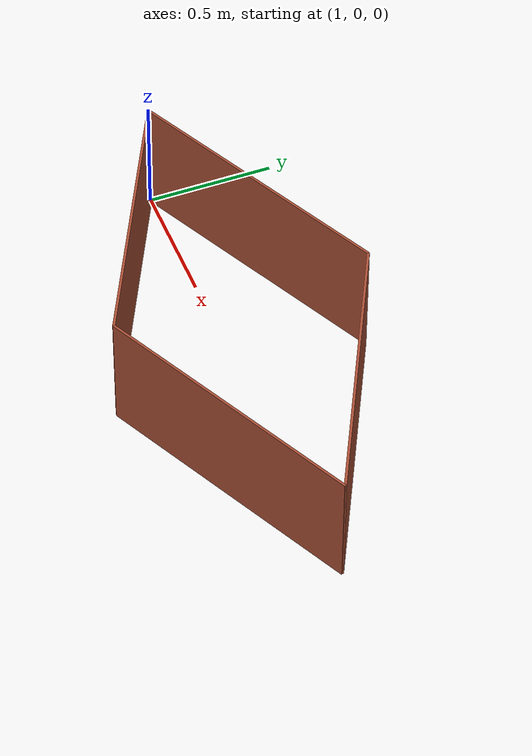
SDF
<sdf version='1.5'>
    <!-- This SDF file is for enlarging environment -->
    <model name='ros_symbol'>
      <static>1</static>
      <link name='symbol'>

        <!-- Obstacle-->
        <collision name='obs_wall_1'>
          <!-- center of two points x,y,z,r,p,y-->
          <pose>1.5 0.25 0.25 0 0 0.464</pose>
          <geometry>
            <box>
            <!-- length, width, height-->
            <size>1.11803398875 0.01 0.5</size>
          </box>
          </geometry>
          <max_contacts>10</max_contacts>
          <surface>
            <bounce/>
            <friction>
              <ode/>
            </friction>
            <contact>
              <ode/>
            </contact>
          </surface>
        </collision>

        <!-- parameters are the same, this is for visualization-->
        <visual name='obs_wall_1'>
          <pose>1.5 0.25 0.25 0 0 0.464</pose>
          <geometry>
            <box>
            <size>1.11803398875 0.01 0.5</size>
          </box>
          </geometry>
          <material>
            <script>
              <uri>file://media/materials/scripts/gazebo.material</uri>
              <name>Gazebo/Bricks</name>
            </script>
          </material>
        </visual>

        <collision name='obs_wall_2'>
          <pose>2.5 0.25 0.25 0 0 -0.464</pose>
          <geometry>
            <box>
            <size>1.11803398875 0.01 0.5</size>
          </box>
          </geometry>
          <max_contacts>10</max_contacts>
          <surface>
            <bounce/>
            <friction>
              <ode/>
            </friction>
            <contact>
              <ode/>
            </contact>
          </surface>
        </collision>

        <visual name='obs_wall_2'>
          <pose>2.5 0.25 0.25 0 0 -0.464</pose>
          <geometry>
            <box>
            <size>1.11803398875 0.01 0.5</size>
          </box>
          </geometry>
          <material>
            <script>
              <uri>file://media/materials/scripts/gazebo.material</uri>
              <name>Gazebo/Bricks</name>
            </script>
          </material>
        </visual>

        <collision name='obs_wall_3'>
          <pose>2.5 -0.25 0.25 0 0 0.464</pose>
          <geometry>
            <box>
            <size>1.11803398875 0.01 0.5</size>
          </box>
          </geometry>
          <max_contacts>10</max_contacts>
          <surface>
            <bounce/>
            <friction>
              <ode/>
            </friction>
            <contact>
              <ode/>
            </contact>
          </surface>
        </collision>

        <visual name='obs_wall_3'>
          <pose>2.5 -0.25 0.25 0 0 0.464</pose>
          <geometry>
            <box>
            <size>1.11803398875 0.01 0.5</size>
          </box>
          </geometry>
          <material>
            <script>
              <uri>file://media/materials/scripts/gazebo.material</uri>
              <name>Gazebo/Bricks</name>
            </script>
          </material>
        </visual>

        <collision name='obs_wall_4'>
          <pose>1.5 -0.25 0.25 0 0 -0.464</pose>
          <geometry>
            <box>
            <size>1.11803398875 0.01 0.5</size>
          </box>
          </geometry>
          <max_contacts>10</max_contacts>
          <surface>
            <bounce/>
            <friction>
              <ode/>
            </friction>
            <contact>
              <ode/>
            </contact>
          </surface>
        </collision>

        <visual name='obs_wall_4'>
          <pose>1.5 -0.25 0.25 0 0 -0.464</pose>
          <geometry>
            <box>
            <size>1.11803398875 0.01 0.5</size>
          </box>
          </geometry>
          <material>
            <script>
              <uri>file://media/materials/scripts/gazebo.material</uri>
              <name>Gazebo/Bricks</name>
            </script>
          </material>
        </visual>

    </link>
  </model>
</sdf>
